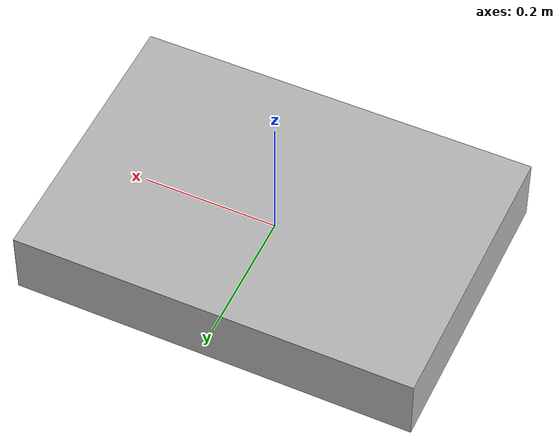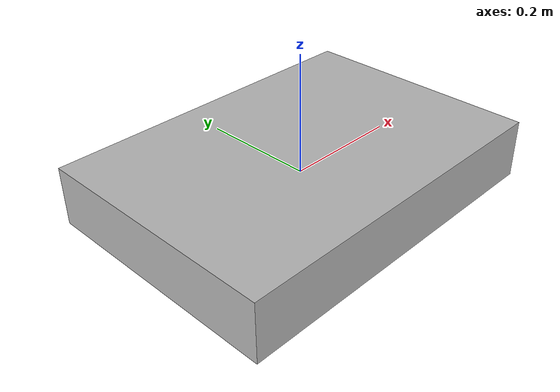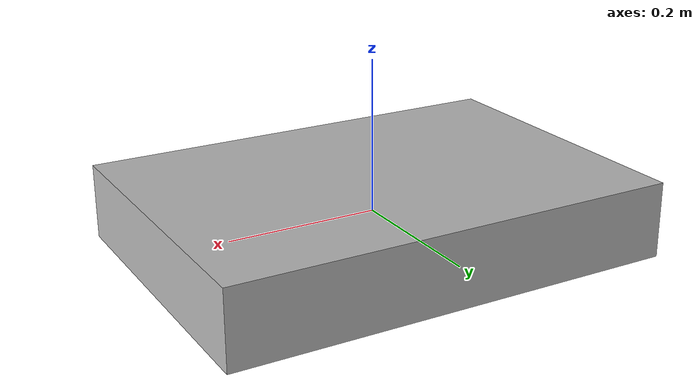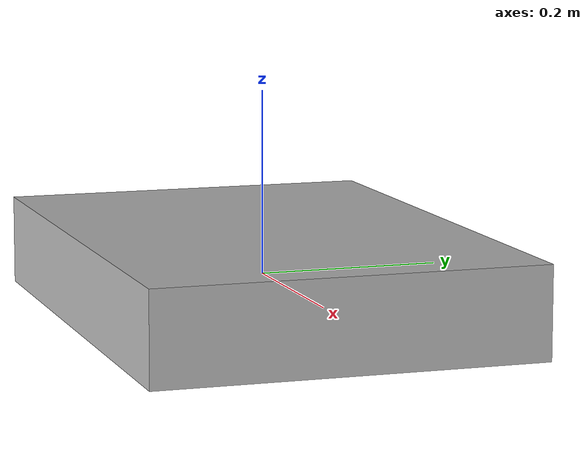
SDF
<?xml version="1.0" ?>
<sdf version="1.5">
  <model name="landing_target">
    <static>true</static>
    <link name="link">
      <collision name="collision">
        <geometry>
          <box>
            <size>0.42 0.584 .1</size>
          </box>
        </geometry>
      </collision>
      <visual name="visual">
        <cast_shadows>false</cast_shadows>
        <geometry>
          <box>
            <size>0.594 0.42 .1</size>
          </box>
        </geometry>
        <material>
          <script>
            <uri>model://landing_target/materials/scripts</uri>
            <uri>model://landing_target/materials/textures</uri>
            <name>vrc/target</name>
          </script>
        </material>
      </visual>
    </link>
  </model>
</sdf>
